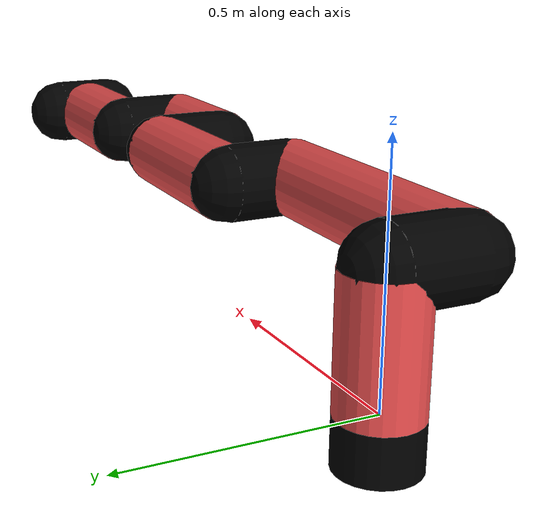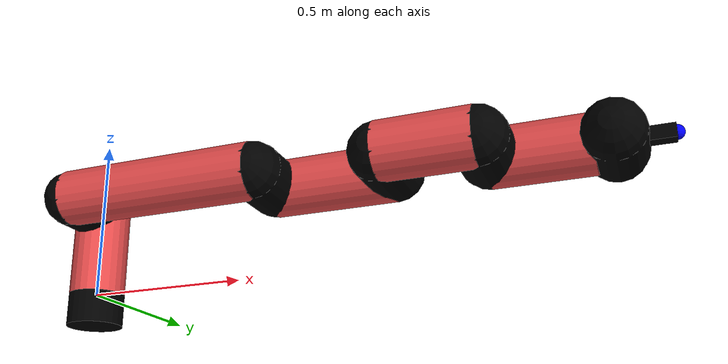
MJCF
<mujoco model="manipulator">
		<compiler angle="degree" coordinate="local" inertiafromgeom="auto" meshdir="meshes/"/>
		<option gravity="0 0 0" integrator="RK4" iterations="30" timestep="0.01"/>

		<default>
		<joint armature="1" limited="true" stiffness="10" damping="15" frictionloss="5.0"/>
		<geom conaffinity="1" condim="3" contype="1" friction=".5 .1 .1" margin="0.002"/>
		<motor ctrllimited="true"/>
		<position ctrllimited="true"/>
		</default>

		<asset>
		<texture builtin="gradient" height="100" rgb1="1.0 1.0 1.0" rgb2="1.0 1.0 1.0" type="skybox" width="100"/>
		<texture builtin="flat" height="32" name="arm_tex" rgb1="0.9 0.3 0.3" type="2d" width="32"/>
		<texture builtin="flat" height="32" name="gripper_tex" rgb1="0.0 0.0 0.0" type="cube" width="32"/>

		<material name="arm_mat" shininess="0.1" specular="0.1" texture="arm_tex"/>
		<material name="gripper_mat" shininess="1" specular="1" texture="gripper_tex"/>
		</asset>

		<worldbody>
		<light cutoff="45" diffuse=".8 .8 .8" dir="0 0.16 -1" directional="false" name="light" pos="0 -2.0 8.0" specular="0.3 0.3 0.3"/>

		<body name="base_link" pos="0 0 -0.1">
		<geom fromto="0 0 0 0 0 0.1" material="arm_mat" name="base_link" rgba="0.0 0.0 0.0 1" size="0.085" type="cylinder"/>
		</body>

		<body name="l1" pos="0 0 0">
<geom fromto="0 0 0 0 0 0.27" material="arm_mat" name="l1" rgba="0.9 0.3 0.3 1" size="0.085" type="cylinder"/>
<geom fromto="0 0 0.27 0 -0.16 0.27" material="arm_mat" name="l1_ex" rgba="0.0 0.0 0.0 1" size="0.085" type="capsule"/>
<joint axis="0 0 1" name="j1" pos="0 0 0" range="-90 90" damping="26.2" frictionloss="7.91"/>

<body name="l2" pos="0 -0.16 0.27">
<geom fromto="0 0 0 0.62 0 0" material="arm_mat" name="l2" rgba="0.9 0.3 0.3 1" size="0.085" type="cylinder"/>
<geom fromto="0.62 0 0 0.62 0.16 0" material="arm_mat" name="l2_ex" rgba="0.0 0.0 0.0 1" size="0.085" type="capsule"/>
<joint axis="0.17 1.2 -0.02" name="j2" pos="0 0 0" range="-90 60" damping="29.22" frictionloss="10.76"/>

<body name="l3" pos="0.62 0.16 0">
<geom fromto="0 0 0 0.37 0 0" material="arm_mat" name="l3" rgba="0.9 0.3 0.3 1" size="0.085" type="cylinder"/>
<geom fromto="0.37 0 0 0.37 -0.16 0" material="arm_mat" name="l3_ex" rgba="0.0 0.0 0.0 1" size="0.085" type="capsule"/>
<joint axis="0.02 1.15 -0.11" name="j3" pos="0 0 0" range="-30 60" damping="28.36" frictionloss="9.03"/>

<body name="l4" pos="0.37 -0.16 0">
<geom fromto="0 0 0 0.27 0 0" material="arm_mat" name="l4" rgba="0.9 0.3 0.3 1" size="0.085" type="cylinder"/>
<geom fromto="0.27 0 0 0.27 0.16 0" material="arm_mat" name="l4_ex" rgba="0.0 0.0 0.0 1" size="0.085" type="capsule"/>
<joint axis="-0.0 1.05 -0.24" name="j4" pos="0 0 0" range="-30 60" damping="35.21" frictionloss="11.97"/>

<body name="l5" pos="0.27 0.16 0">
<geom fromto="0 0 0 0.28 0 0" material="arm_mat" name="l5" rgba="0.9 0.3 0.3 1" size="0.085" type="cylinder"/>
<joint axis="0.05 0.97 0.15" name="j5" pos="0 0 0" range="-30 60" damping="30.66" frictionloss="10.39"/>

<body name="gripper" pos="0.28 0 0">
<geom fromto="0.05 -0.07 0 0.05 0.07 0" material="gripper_mat" name="gripper" rgba="0.0 0.0 0.0 1" size="0.085" type="capsule"/><joint axis="1 0 0" name="j6" pos="0 0 0" range="-90 90" damping="15" frictionloss="5.0"/><body name="finger" pos="0.1 0 0">
<geom fromto="0 0.0 0 0.1 0.0 0" material="gripper_mat" name="finger" rgba="0.0 0.0 0.0 1" size="0.020 0.06 0.06" type="box"/>
</body>
<site name="current" pos="0.2 0. 0.0" rgba="0. 0. 1.0 1" size="0.02" type="sphere"/>
</body>
</body>
</body>
</body>
</body>
</body>
</worldbody>
<actuator>
<motor ctrllimited="true" ctrlrange="-1.0 1.0" joint="j1" gear="71.23"/>
<motor ctrllimited="true" ctrlrange="-1.0 1.0" joint="j2" gear="85.74"/>
<motor ctrllimited="true" ctrlrange="-1.0 1.0" joint="j3" gear="73.09"/>
<motor ctrllimited="true" ctrlrange="-1.0 1.0" joint="j4" gear="72.11"/>
<motor ctrllimited="true" ctrlrange="-1.0 1.0" joint="j5" gear="83.84"/>
<motor ctrllimited="true" ctrlrange="-1.0 1.0" joint="j6" gear="80"/>
</actuator>
</mujoco>
